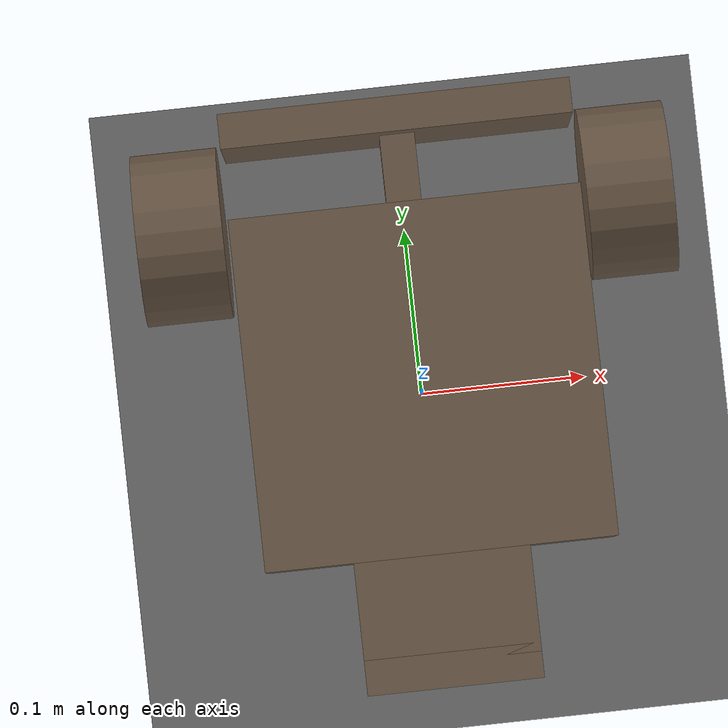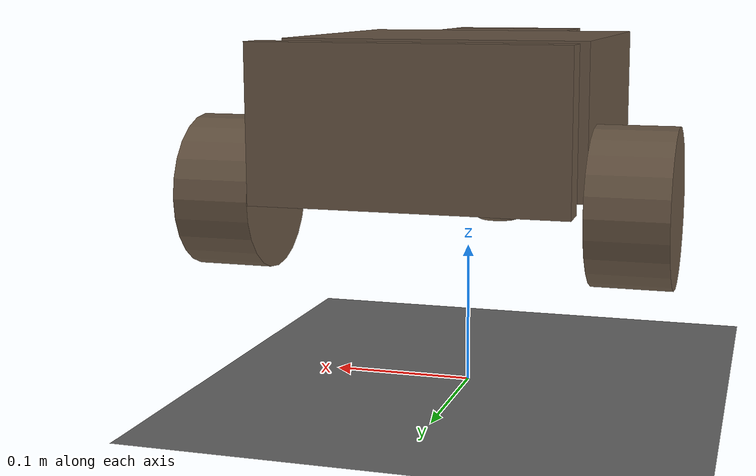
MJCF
<mujoco model="car">
  <compiler angle="degree" coordinate="local" inertiafromgeom="true"/>
  <option timestep="0.01" iterations="4"/>
  <custom>
    <!-- brax custom params -->
    <numeric data="10000" name="constraint_limit_stiffness"/>
    <numeric data="10000" name="constraint_stiffness"/>
    <numeric data="20" name="constraint_ang_damping"/>
    <numeric data="20" name="constraint_vel_damping"/>
    <numeric data="1" name="vel_damping"/>
    <numeric data="-0.05" name="ang_damping"/>
    <numeric data="1" name="spring_mass_scale"/>
    <numeric data="1" name="spring_inertia_scale"/>
    <numeric data="15" name="solver_maxls"/>
  </custom>
  <default>
    <geom contype="0" conaffinity="0" condim="3" density="5.0" friction="1 0.5 0.5"
	  rgba="0.4 0.33 0.26 1.0" size=".05" type="sphere"/>
    <joint armature="1" damping="1"/>
    <site size="0.032" type="sphere"/>
  </default>
  <asset>
    <texture builtin="gradient" height="100" rgb1="1 1 1" rgb2="0 0 0" type="skybox" width="100"/>
    <texture builtin="flat" height="1278" mark="cross" markrgb="1 1 1" name="texgeom" random="0.01" rgb1="0.8 0.6 0.4" rgb2="0.8 0.6 0.4" type="cube" width="127"/>
    <texture builtin="checker" height="100" name="texplane" rgb1="0 0 0" rgb2="0.8 0.8 0.8" type="2d" width="100"/>
    <material name="MatPlane" reflectance="0.5" shininess="1" specular="1" texrepeat="60 60" texture="texplane"/>
    <material name="geom" texture="texgeom" texuniform="true"/>
  </asset>
  <worldbody>
    <light cutoff="100" diffuse="1 1 1" dir="-0 0 -1.3" directional="true" exponent="1" pos="0 0 1.3" specular=".1 .1 .1"/>
    <geom conaffinity="1" condim="3" material="MatPlane" name="floor" pos="0 0 0" size="5 5 0.1" type="plane" rgba="0.5 0.5 0.5 1.0"/>

    <body name="robot" pos="0 0 0.20">
      <site name="robot" pos="0 0 0"/>
      <camera name="track" mode="trackcom" pos="0 -3 0.3" xyaxes="1 0 0 0 0 1"/>
      <geom name="robot_geom" pos="0 0 0" size=".1 .1 .05" type="box"/>
      <joint armature="0" damping="0" limited="false" margin="0.01" name="root" pos="0 0 0" type="free"/>

      <geom name="back_bumper" pos="0 .15 0" size=".1 .01 .05" type="box"/>
      <geom name="back_connector" pos="0 .125 0" size=".01 .025 .03" type="box"/>
      <geom name="front_bumper" pos="0 -.165 0" size=".05 .01 .05" type="box"/>
      <geom name="front_connector" pos="0 -.13 .04" size=".05 .03 .01" type="box"/>

      <body name="left_wheel" pos="-.1 .1 -.05">
        <joint name="left_wheel_joint" type="hinge" axis="1 0 0"/>
        <geom name="left_wheel_geom" contype="1" type="cylinder" fromto="-.055 0 0 -0.005 0 0"/>
      </body>

      <body name="right_wheel" pos=".1 .1 -.05">
        <joint name="right_wheel_joint" type="hinge" axis="1 0 0"/>
        <geom name="right_wheel_geom" contype="1" type="cylinder" fromto="0.005 0 0 .055 0 0"/>
      </body>

      <body name="rear_wheel" pos="0 -.1 -.05">
        <joint name="rear_wheel_joint" type="ball"/>
        <geom name="rear_wheel_geom" contype="1"/>
      </body>
    </body>
  </worldbody>
  <sensor>
    <jointvel joint="left_wheel_joint" name="jointvel_left_wheel"/>
    <jointvel joint="right_wheel_joint" name="jointvel_right_wheel"/>

    <ballquat joint="rear_wheel_joint" name="ballquat_rear"/>
    <ballangvel joint="rear_wheel_joint" name="ballangvel_rear"/>

    <!-- Used for observation -->
    <accelerometer site="robot" name="accelerometer"/>
    <velocimeter site="robot" name="velocimeter"/>
    <gyro site="robot" name="gyro"/>
    <magnetometer site="robot" name="magnetometer"/>

    <!-- Used for intrinsic constraints -->
    <subtreecom body="robot" name="subtreecom"/>
    <subtreelinvel body="robot" name="subtreelinvel"/>
    <subtreeangmom body="robot" name="subtreeangmom"/>
  </sensor>
  <actuator>
    <motor gear="1" jointinparent="left_wheel_joint" name="left_motor"/>
    <motor gear="1" jointinparent="right_wheel_joint" name="right_motor"/>
  </actuator>
</mujoco>
